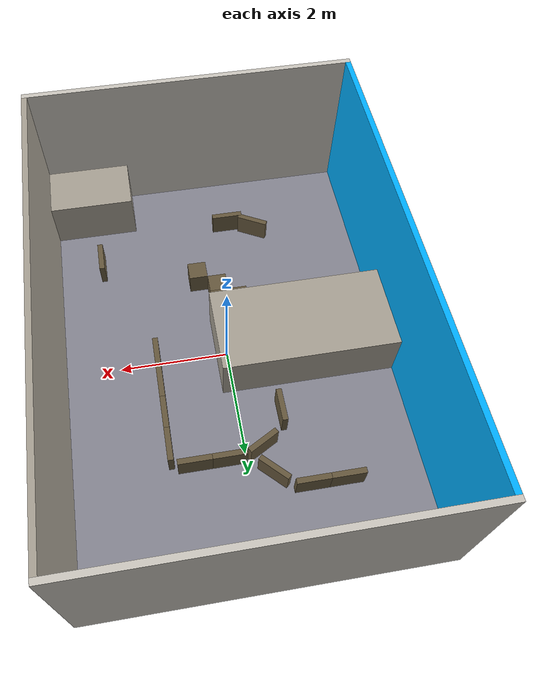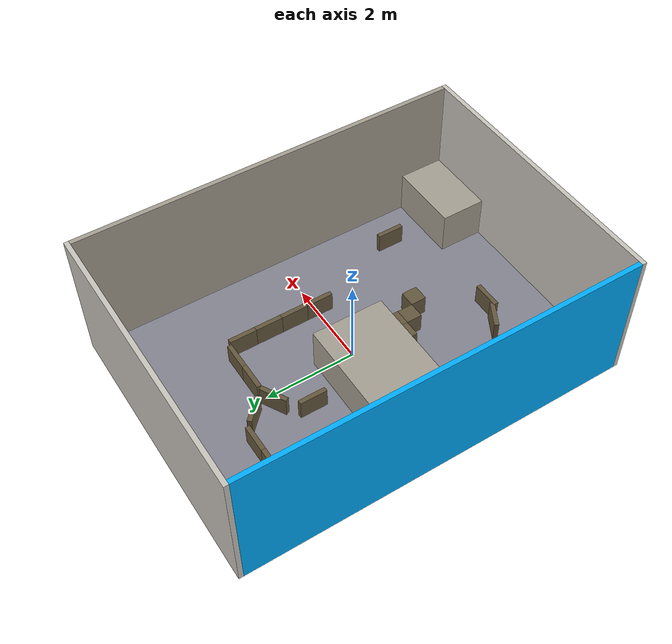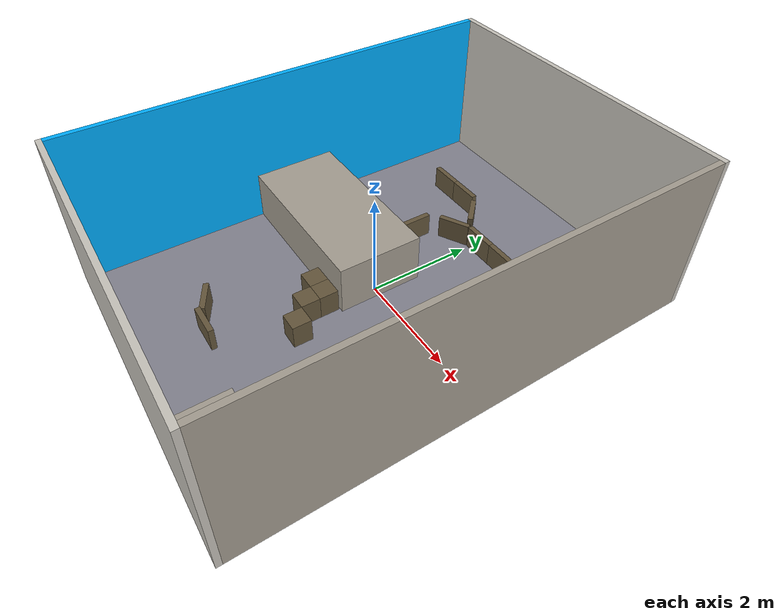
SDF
<sdf version="1.7">
 <world name="037_aruco">
  <plugin filename="gz-sim-physics-system" name="gz::sim::systems::Physics"/>
  <plugin filename="gz-sim-user-commands-system" name="gz::sim::systems::UserCommands"/>
  <plugin filename="gz-sim-scene-broadcaster-system" name="gz::sim::systems::SceneBroadcaster"/>
  <plugin filename="gz-sim-sensors-system" name="gz::sim::systems::Sensors">
   <render_engine>ogre</render_engine>
  </plugin>
  <plugin filename="gz-sim-imu-system" name="gz::sim::systems::Imu"/>
  <include><uri>package://jackal_helper/worlds/037/037_base.sdf</uri></include>
  <include><uri>package://jackal_helper/worlds/037/037_obstacles_1.sdf</uri></include>
  <light name="sun_light" type="point">
   <pose>0 0 10 0 0 0</pose>
   <diffuse>1 1 1 1</diffuse>
   <specular>0.2 0.2 0.2 1</specular>
   <attenuation>
    <range>1000</range>
    <constant>0.9</constant>
    <linear>0.01</linear>
    <quadratic>0.001</quadratic>
   </attenuation>
   <direction>-0.5 0.1 -1</direction>
  </light>
  <physics type="ode">
   <gravity>0 0 -9.81</gravity>
   <max_step_size>0.001</max_step_size>
   <real_time_factor>1</real_time_factor>
  </physics>
 </world>
</sdf>

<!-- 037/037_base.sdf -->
<sdf version="1.7">
  <model name="037_base">

    <!-- ROOM DIMENSIONS -->
    <!-- Width  (X): 6.0 m  -->
    <!-- Depth  (Y): 8.5 m -->
    <!-- Height (Z): 3.0 m -->

    <model name="037_base">
      <static>true</static>

      <!-- Ground Plane              -->
      <link name="ground">
        <pose>0 0 0 0 0 0</pose>

        <collision name="ground_collision">
          <geometry>
            <box>
              <size>6 8.5 0.1</size>
            </box>
          </geometry>
        </collision>

        <visual name="ground_visual">
          <geometry>
            <box>
              <size>6 8.5 0.1</size>
            </box>
          </geometry>

          <material>
            <ambient>0.5176 0.5176 0.5647 1</ambient>
            <diffuse>0.5176 0.5176 0.5647 1</diffuse>
            <specular>0.1 0.1 0.1 1</specular>
          </material>
        </visual>
      </link>

      <!-- Left Wall (-X)            -->
      <!-- Color: #00AFFFFF          -->
      <link name="left_wall">
        <pose>-3.05 0 1.5 0 0 0</pose>

        <collision name="left_wall_collision">
          <geometry>
            <box>
              <size>0.1 8.5 3</size>
            </box>
          </geometry>
        </collision>

        <visual name="left_wall_visual">
          <geometry>
            <box>
              <size>0.1 8.5 3</size>
            </box>
          </geometry>

          <material>
            <ambient>0.0 0.6863 1.0 1</ambient>
            <diffuse>0.0 0.6863 1.0 1</diffuse>
            <specular>0.1 0.1 0.1 1</specular>
          </material>
        </visual>
      </link>

      <!-- Right Wall (+X)           -->
      <!-- Color: #A69F92FF          -->
      <link name="right_wall">
        <pose>3.05 0 1.5 0 0 0</pose>

        <collision name="right_wall_collision">
          <geometry>
            <box>
              <size>0.1 8.5 3</size>
            </box>
          </geometry>
        </collision>

        <visual name="right_wall_visual">
          <geometry>
            <box>
              <size>0.1 8.5 3</size>
            </box>
          </geometry>

          <material>
            <ambient>0.6510 0.6235 0.5725 1</ambient>
            <diffuse>0.6510 0.6235 0.5725 1</diffuse>
            <specular>0.1 0.1 0.1 1</specular>
          </material>
        </visual>
      </link>

      <!-- Front Wall (+Y)           -->
      <!-- Back Wall (-Y)            -->
      <!-- Color: #C9C5BDFF          -->

      <link name="front_wall">
        <pose>0 4.3 1.5 0 0 0</pose>

        <collision name="front_wall_collision">
          <geometry>
            <box>
              <size>6.2 0.1 3</size>
            </box>
          </geometry>
        </collision>

        <visual name="front_wall_visual">
          <geometry>
            <box>
              <size>6.2 0.1 3</size>
            </box>
          </geometry>

          <material>
            <ambient>0.7882 0.7725 0.7412 1</ambient>
            <diffuse>0.7882 0.7725 0.7412 1</diffuse>
            <specular>0.1 0.1 0.1 1</specular>
          </material>
        </visual>
      </link>

      <link name="back_wall">
        <pose>0 -4.3 1.5 0 0 0</pose>

        <collision name="back_wall_collision">
          <geometry>
            <box>
              <size>6.2 0.1 3</size>
            </box>
          </geometry>
        </collision>

        <visual name="back_wall_visual">
          <geometry>
            <box>
              <size>6.2 0.1 3</size>
            </box>
          </geometry>

          <material>
            <ambient>0.7882 0.7725 0.7412 1</ambient>
            <diffuse>0.7882 0.7725 0.7412 1</diffuse>
            <specular>0.1 0.1 0.1 1</specular>
          </material>
        </visual>
      </link>

    </model>
  </model>
</sdf>

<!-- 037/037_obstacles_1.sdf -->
<sdf version="1.7">
    <model name="037_obstacles_1">
        <!-- INCLUDE base Obstacles -->
    <include>
      <uri>package://jackal_helper/worlds/037/037_obstacles_base.sdf</uri>
    </include>
    <!-- Cardbord Box          -->
    <!-- Color: #65573c          -->

    <link name="box_1">
        <pose>-0.40 -1 0.25 0 0 0</pose>

        <collision name="box_1_collision">
            <geometry>
            <box>
                <size>0.35 0.35 0.5 0 0 0</size>
            </box>
            </geometry>
        </collision>

        <visual name="box_1_visual">
            <geometry>
            <box>
                <size> 0.35 0.35 0.5 0 0 0</size>
            </box>
            </geometry>

            <material>
            <ambient>0.396 0.3412 0.2353 1</ambient>
            <diffuse>0.396 0.3412 0.2353 1</diffuse>
            <specular>0.1 0.1 0.1 1</specular>
            </material>
        </visual>
    </link>

    <link name="box_2">
        <pose>-0.05 -1 0.25 0 0 0</pose>

        <collision name="box_2_collision">
            <geometry>
            <box>
                <size>0.35 0.35 0.5 0 0 0</size>
            </box>
            </geometry>
        </collision>

        <visual name="box_2_visual">
            <geometry>
            <box>
                <size> 0.35 0.35 0.5 0 0 0</size>
            </box>
            </geometry>

            <material>
            <ambient>0.396 0.3412 0.2353 1</ambient>
            <diffuse>0.396 0.3412 0.2353 1</diffuse>
            <specular>0.1 0.1 0.1 1</specular>
            </material>
        </visual>
    </link>

    <link name="box_3">
        <pose>-0.05 -1.35 0.25 0 0 0</pose>

        <collision name="box_3_collision">
            <geometry>
            <box>
                <size>0.35 0.35 0.5 0 0 0</size>
            </box>
            </geometry>
        </collision>

        <visual name="box_3_visual">
            <geometry>
            <box>
                <size> 0.35 0.35 0.5 0 0 0</size>
            </box>
            </geometry>

            <material>
            <ambient>0.396 0.3412 0.2353 1</ambient>
            <diffuse>0.396 0.3412 0.2353 1</diffuse>
            <specular>0.1 0.1 0.1 1</specular>
            </material>
        </visual>
    </link>

    <link name="box_4">
        <pose>0.3 -1.7 0.25 0 0 0</pose>

        <collision name="box_4_collision">
            <geometry>
            <box>
                <size>0.35 0.35 0.5 0 0 0</size>
            </box>
            </geometry>
        </collision>

        <visual name="box_4_visual">
            <geometry>
            <box>
                <size> 0.35 0.35 0.5 0 0 0</size>
            </box>
            </geometry>

            <material>
            <ambient>0.396 0.3412 0.2353 1</ambient>
            <diffuse>0.396 0.3412 0.2353 1</diffuse>
            <specular>0.1 0.1 0.1 1</specular>
            </material>
        </visual>
    </link>

    <link name="box_5">
        <pose>1.3 0.0 0.25 0 0 0</pose>

        <collision name="box_5_collision">
            <geometry>
            <box>
                <size>0.1 0.6 0.5 0 0 0</size>
            </box>
            </geometry>
        </collision>

        <visual name="box_5_visual">
            <geometry>
            <box>
                <size> 0.1 0.6 0.5 0 0 0</size>
            </box>
            </geometry>

            <material>
            <ambient>0.396 0.3412 0.2353 1</ambient>
            <diffuse>0.396 0.3412 0.2353 1</diffuse>
            <specular>0.1 0.1 0.1 1</specular>
            </material>
        </visual>
    </link>

    <link name="box_6">
        <pose>1.3 0.6 0.25 0 0 0</pose>

        <collision name="box_6_collision">
            <geometry>
            <box>
                <size>0.1 0.6 0.5 0 0 0</size>
            </box>
            </geometry>
        </collision>

        <visual name="box_6_visual">
            <geometry>
            <box>
                <size> 0.1 0.6 0.5 0 0 0</size>
            </box>
            </geometry>

            <material>
            <ambient>0.396 0.3412 0.2353 1</ambient>
            <diffuse>0.396 0.3412 0.2353 1</diffuse>
            <specular>0.1 0.1 0.1 1</specular>
            </material>
        </visual>
    </link>

    <link name="box_7">
        <pose>1.3 1.2 0.25 0 0 0</pose>

        <collision name="box_7_collision">
            <geometry>
            <box>
                <size>0.1 0.6 0.5 0 0 0</size>
            </box>
            </geometry>
        </collision>

        <visual name="box_7_visual">
            <geometry>
            <box>
                <size> 0.1 0.6 0.5 0 0 0</size>
            </box>
            </geometry>

            <material>
            <ambient>0.396 0.3412 0.2353 1</ambient>
            <diffuse>0.396 0.3412 0.2353 1</diffuse>
            <specular>0.1 0.1 0.1 1</specular>
            </material>
        </visual>
    </link>

    <link name="box_8">
        <pose>1.3 1.8 0.25 0 0 0</pose>

        <collision name="box_8_collision">
            <geometry>
            <box>
                <size>0.1 0.6 0.5 0 0 0</size>
            </box>
            </geometry>
        </collision>

        <visual name="box_8_visual">
            <geometry>
            <box>
                <size> 0.1 0.6 0.5 0 0 0</size>
            </box>
            </geometry>

            <material>
            <ambient>0.396 0.3412 0.2353 1</ambient>
            <diffuse>0.396 0.3412 0.2353 1</diffuse>
            <specular>0.1 0.1 0.1 1</specular>
            </material>
        </visual>
    </link>

    <link name="box_9">
        <pose> 0.9 2.15 0.25 0 0 0</pose>

        <collision name="box_9_collision">
            <geometry>
            <box>
                <size>0.6 0.1 0.5 0 0 0</size>
            </box>
            </geometry>
        </collision>

        <visual name="box_9_visual">
            <geometry>
            <box>
                <size> 0.6 0.1 0.5 0 0 0</size>
            </box>
            </geometry>

            <material>
            <ambient>0.396 0.3412 0.2353 1</ambient>
            <diffuse>0.396 0.3412 0.2353 1</diffuse>
            <specular>0.1 0.1 0.1 1</specular>
            </material>
        </visual>
    </link>

    <link name="box_10">
        <pose> 0.3 2.15 0.25 0 0 0</pose>

        <collision name="box_10_collision">
            <geometry>
            <box>
                <size>0.6 0.1 0.5 0 0 0</size>
            </box>
            </geometry>
        </collision>

        <visual name="box_10_visual">
            <geometry>
            <box>
                <size> 0.6 0.1 0.5 0 0 0</size>
            </box>
            </geometry>

            <material>
            <ambient>0.396 0.3412 0.2353 1</ambient>
            <diffuse>0.396 0.3412 0.2353 1</diffuse>
            <specular>0.1 0.1 0.1 1</specular>
            </material>
        </visual>
    </link>

    <link name="box_11">
        <pose> -0.3 2.0 0.25 0 0 0.5</pose>

        <collision name="box_10_collision">
            <geometry>
            <box>
                <size>0.6 0.1 0.5 0 0 0</size>
            </box>
            </geometry>
        </collision>

        <visual name="box_10_visual">
            <geometry>
            <box>
                <size> 0.6 0.1 0.5 0 0 0</size>
            </box>
            </geometry>

            <material>
            <ambient>0.396 0.3412 0.2353 1</ambient>
            <diffuse>0.396 0.3412 0.2353 1</diffuse>
            <specular>0.1 0.1 0.1 1</specular>
            </material>
        </visual>
    </link>

    <link name="box_12">
        <pose> -0.75 1.4 0.25 0 0 0.0</pose>

        <collision name="box_12_collision">
            <geometry>
            <box>
                <size>0.1 0.6 0.5 0 0 0</size>
            </box>
            </geometry>
        </collision>

        <visual name="box_12_visual">
            <geometry>
            <box>
                <size> 0.1 0.6 0.5 0 0 0</size>
            </box>
            </geometry>

            <material>
            <ambient>0.396 0.3412 0.2353 1</ambient>
            <diffuse>0.396 0.3412 0.2353 1</diffuse>
            <specular>0.1 0.1 0.1 1</specular>
            </material>
        </visual>
    </link>

    <link name="box_13">
        <pose>2.15 -2.35 0.25 0 0 0</pose>

        <collision name="box_13_collision">
            <geometry>
            <box>
                <size>0.1 0.6 0.5 0 0 0</size>
            </box>
            </geometry>
        </collision>

        <visual name="box_13_visual">
            <geometry>
            <box>
                <size> 0.1 0.6 0.5 0 0 0</size>
            </box>
            </geometry>

            <material>
            <ambient>0.396 0.3412 0.2353 1</ambient>
            <diffuse>0.396 0.3412 0.2353 1</diffuse>
            <specular>0.1 0.1 0.1 1</specular>
            </material>
        </visual>
    </link>

    <link name="box_14">
        <pose>-0.50 -3.00 0.25 0 0 0</pose>

        <collision name="box_14_collision">
            <geometry>
            <box>
                <size>0.6 0.1 0.5 0 0 0</size>
            </box>
            </geometry>
        </collision>

        <visual name="box_14_visual">
            <geometry>
            <box>
                <size> 0.6 0.1 0.5 0 0 0</size>
            </box>
            </geometry>

            <material>
            <ambient>0.396 0.3412 0.2353 1</ambient>
            <diffuse>0.396 0.3412 0.2353 1</diffuse>
            <specular>0.1 0.1 0.1 1</specular>
            </material>
        </visual>
    </link>

    <link name="box_15">
        <pose>-1.00 -2.80 0.25 0 0 -0.5</pose>

        <collision name="box_15_collision">
            <geometry>
            <box>
                <size>0.6 0.1 0.5 0 0 0</size>
            </box>
            </geometry>
        </collision>

        <visual name="box_15_visual">
            <geometry>
            <box>
                <size> 0.6 0.1 0.5 0 0 0</size>
            </box>
            </geometry>

            <material>
            <ambient>0.396 0.3412 0.2353 1</ambient>
            <diffuse>0.396 0.3412 0.2353 1</diffuse>
            <specular>0.1 0.1 0.1 1</specular>
            </material>
        </visual>
    </link>

    <link name="box_16">
        <pose>-0.4 2.5 0.25 0 0 -0.785</pose>

        <collision name="box_16_collision">
            <geometry>
            <box>
                <size>0.6 0.1 0.5 0 0 0</size>
            </box>
            </geometry>
        </collision>

        <visual name="box_16_visual">
            <geometry>
            <box>
                <size> 0.6 0.1 0.5 0 0 0</size>
            </box>
            </geometry>

            <material>
            <ambient>0.396 0.3412 0.2353 1</ambient>
            <diffuse>0.396 0.3412 0.2353 1</diffuse>
            <specular>0.1 0.1 0.1 1</specular>
            </material>
        </visual>
    </link>

    <link name="box_17">
        <pose>-1.0 2.8 0.25 0 0 0.0</pose>

        <collision name="box_17_collision">
            <geometry>
            <box>
                <size>0.6 0.1 0.5 0 0 0</size>
            </box>
            </geometry>
        </collision>

        <visual name="box_17_visual">
            <geometry>
            <box>
                <size> 0.6 0.1 0.5 0 0 0</size>
            </box>
            </geometry>

            <material>
            <ambient>0.396 0.3412 0.2353 1</ambient>
            <diffuse>0.396 0.3412 0.2353 1</diffuse>
            <specular>0.1 0.1 0.1 1</specular>
            </material>
        </visual>
    </link>

    <link name="box_18">
        <pose>-1.6 2.8 0.25 0 0 0.0</pose>

        <collision name="box_18_collision">
            <geometry>
            <box>
                <size>0.6 0.1 0.5 0 0 0</size>
            </box>
            </geometry>
        </collision>

        <visual name="box_18_visual">
            <geometry>
            <box>
                <size> 0.6 0.1 0.5 0 0 0</size>
            </box>
            </geometry>

            <material>
            <ambient>0.396 0.3412 0.2353 1</ambient>
            <diffuse>0.396 0.3412 0.2353 1</diffuse>
            <specular>0.1 0.1 0.1 1</specular>
            </material>
        </visual>
    </link>

    </model>
</sdf>

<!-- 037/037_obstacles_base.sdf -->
<sdf version="1.7">
    <model name="037_obstacles_base">

        <!-- Big table clump at the right wall          -->
        <!-- Color: #A69F92FF          -->
        <link name="table_clump_left">
        <pose>-1.40 0 0.5 0 0 0</pose>

        <collision name="table_clump_left_collision">
            <geometry>
            <box>
                <size>3.2 1.6 1.0 0 0 0</size>
            </box>
            </geometry>
        </collision>

        <visual name="table_clump_left_visual">
            <geometry>
            <box>
                <size>3.2 1.6 1.0 0 0 0</size>
            </box>
            </geometry>

            <material>
            <ambient>0.6510 0.6235 0.5725 1</ambient>
            <diffuse>0.6510 0.6235 0.5725 1</diffuse>
            <specular>0.1 0.1 0.1 1</specular>
            </material>
        </visual>
        </link>

        <link name="table_clump_right_bottom">
        <pose>2.2 -3.75 0.5 0 0 0</pose>

        <collision name="table_clump_right_bottom_collision">
            <geometry>
            <box>
                <size>1.6 1.0 1.0 0 0 0</size>
            </box>
            </geometry>
        </collision>

        <!-- Small table clump at the bottom left corner          -->
        <!-- Color: #A69F92FF          -->

        <visual name="table_clump_right_bottom_visual">
            <geometry>
            <box>
                <size>1.6 1.0 1.0 0 0 0</size>
            </box>
            </geometry>

            <material>
            <ambient>0.6510 0.6235 0.5725 1</ambient>
            <diffuse>0.6510 0.6235 0.5725 1</diffuse>
            <specular>0.1 0.1 0.1 1</specular>
            </material>
        </visual>
        </link>

    </model>
</sdf>
